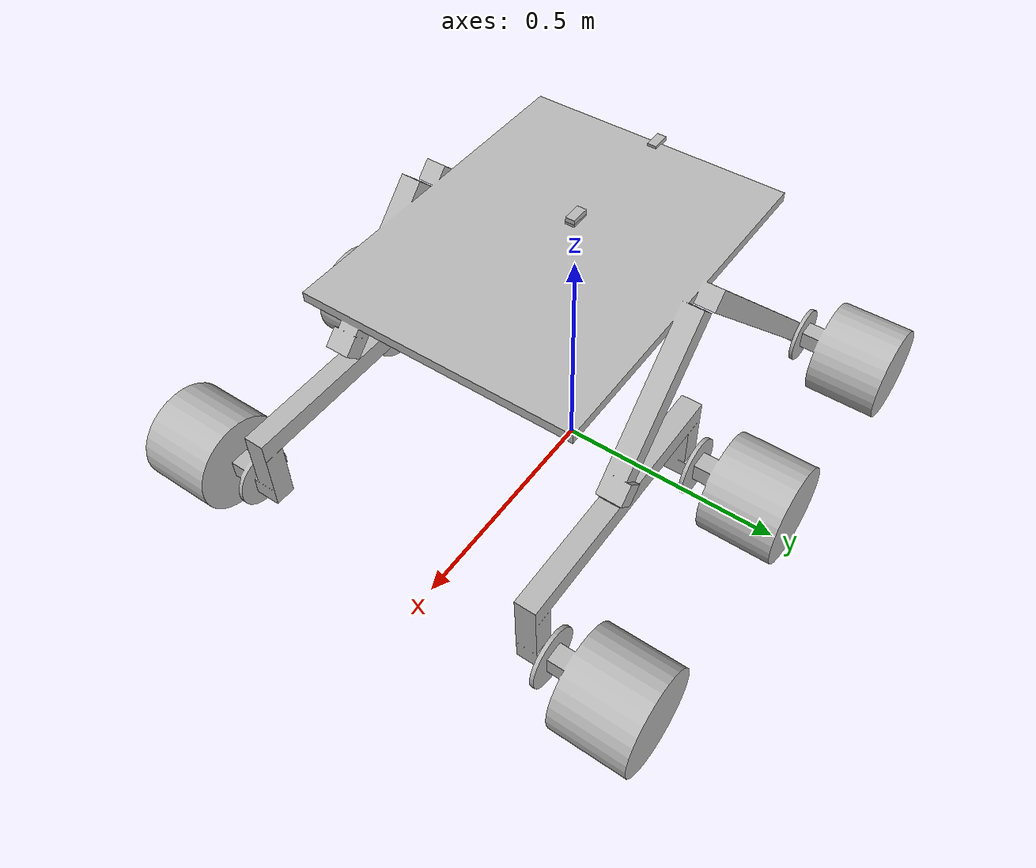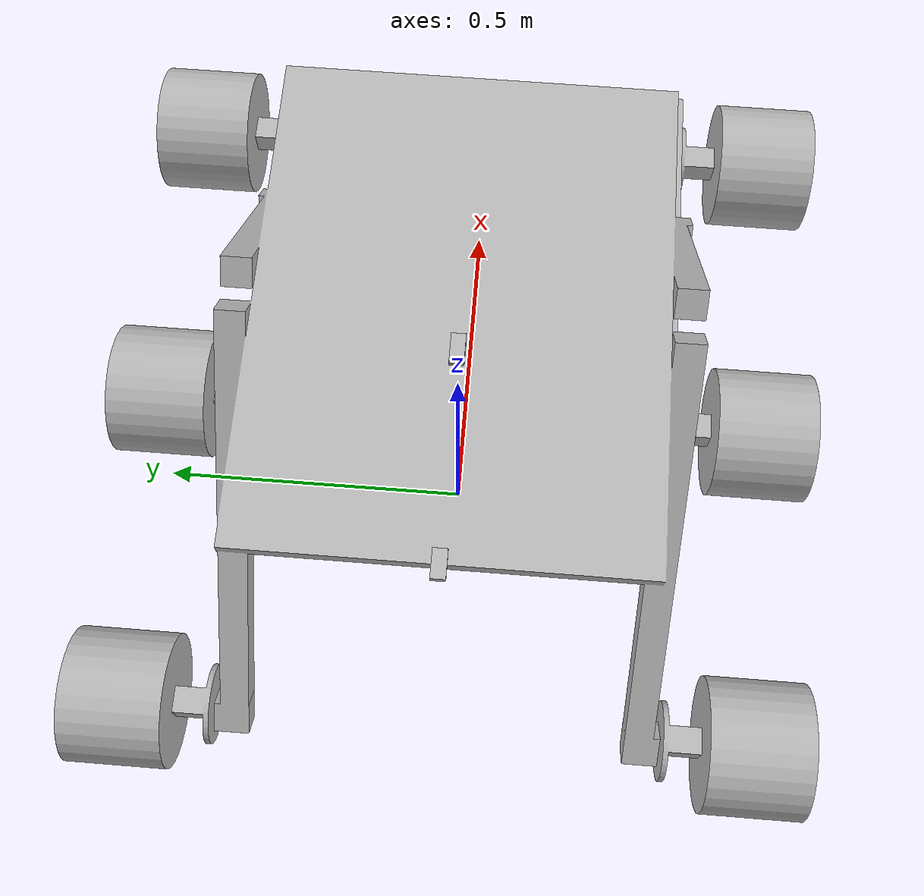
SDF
<?xml version="1.0" ?>
<sdf version="1.5">

<model name="rover">
	<pose>0 0 0.2 0 0 0</pose>
	<static>false</static>
    <link name="chassis">
        <pose>0 0 0 0 0 0</pose>
        <collision name="collision">
            <geometry>
                <mesh>
					<uri>model://rover/3dmodels/platforma_nieruchome.dae</uri>
				</mesh>
            </geometry>
        </collision>
        <visual name="visual">
            <geometry>
                <mesh>
					<uri>model://rover/3dmodels/platforma_nieruchome.dae</uri>
				</mesh>
            </geometry>
        </visual>
    </link>

		<link name="immmmm">
			<pose>-0.0 0 0.41032 0 0 0</pose>
			<collision name="collision">
				<geometry>
						<box>
								<size>.04 .02 .01</size>
							</box>
						</geometry>
			</collision>
			<visual name="visual">
					<geometry>
						<box>
								<size>.04 .02 .01</size>
							</box>
					</geometry>
			</visual>
			<sensor name="imuu" type="imu">
				<pose>0 0 0 0 0 0</pose>
				<plugin name="imu_plugin" filename="libgazebo_ros_imu_sensor.so">
					<topicName>/imu</topicName>
    			<frameName>/data</frameName>
					<updateRateHZ>100.0</updateRateHZ>
        	<gaussianNoise>0.0</gaussianNoise>
        	<xyzOffset>0 0 0</xyzOffset>
        	<rpyOffset>0 0 0</rpyOffset>
				</plugin>

			</sensor>
		</link>

		<joint type="fixed" name="immmmm_front_joint">
						<pose>0.0 -0.0 0.0 0 0 0</pose>
						<child>immmmm</child>
						<parent>chassis</parent>
						<axis>
							<xyz>0 0 0</xyz>
						</axis>
		</joint>

		<link name="lidar">
			<pose>-0.0 0 0.42032 0 0 0</pose>
			<collision name="collision">
				<geometry>
						<box>
								<size>.04 .02 .01</size>
							</box>
						</geometry>
			</collision>
			<visual name="visual">
					<geometry>
						<box>
								<size>.04 .02 .01</size>
							</box>
					</geometry>
			</visual>
			<sensor type="gpu_ray" name="head_hokuyo_sensor">
	<pose>-0.0 0 0 0 0 0</pose>
	<visualize>false</visualize>
	<update_rate>20</update_rate>
	<always_on>1</always_on>
	<ray>
		<scan>
			<horizontal>
				<samples>720</samples>
				<resolution>1</resolution>
				<min_angle>-1.570796</min_angle>
				<max_angle>1.570796</max_angle>
			</horizontal>
		</scan>
		<range>
			<min>1.0</min>
			<max>30.0</max>
			<resolution>0.01</resolution>
		</range>
		<noise>
			<type>gaussian</type>
			<mean>0.0</mean>
			<stddev>0.01</stddev>
		</noise>
	</ray>
	<plugin name="gazebo_ros_head_hokuyo_controller" filename="libgazebo_ros_gpu_laser.so">
		<topicName>/rover/laser/scan</topicName>
		<frameName>lidar</frameName>
	</plugin>
</sensor>
		</link>

		<joint type="fixed" name="lidar_joint">
						<pose>0.0 -0.0 0.0 0 0 0</pose>
						<child>lidar</child>
						<parent>chassis</parent>
						<axis>
							<xyz>0 0 0</xyz>
						</axis>
		</joint>

		<link name="depth_camera">
			<pose>-0.289962 0 0.41032 0 0 0</pose>
			<collision name="collision">
				<geometry>
						<box>
								<size>.04 .02 .01</size>
							</box>
						</geometry>
			</collision>
			<visual name="visual">
					<geometry>
						<box>
								<size>.04 .02 .01</size>
							</box>
					</geometry>
			</visual>
			<sensor name="d_cam" type="depth">
				<pose>0 0 0 0 0 3.14159265</pose>
				<plugin name="depth_controller" filename="libgazebo_ros_openni_kinect.so">
       <baseline>0.2</baseline>
       <alwaysOn>true</alwaysOn>
       <updateRate>1.0</updateRate>
       <cameraName>d_cam_ir</cameraName>
       <imageTopicName>//depth/image_raw</imageTopicName>
       <cameraInfoTopicName>/d_cam/depth/camera_info</cameraInfoTopicName>
       <depthImageTopicName>/d_cam/depth/image_raw</depthImageTopicName>
       <depthImageInfoTopicName>/d_cam/depth/camera_info</depthImageInfoTopicName>
       <pointCloudTopicName>/d_cam/depth/points</pointCloudTopicName>
       <frameName>image</frameName>
       <pointCloudCutoff>0.5</pointCloudCutoff>
       <pointCloudCutoffMax>3.0</pointCloudCutoffMax>
       <distortionK1>0.00000001</distortionK1>
       <distortionK2>0.00000001</distortionK2>
       <distortionK3>0.00000001</distortionK3>
       <distortionT1>0.00000001</distortionT1>
       <distortionT2>0.00000001</distortionT2>
       <CxPrime>0</CxPrime>
       <Cx>0</Cx>
       <Cy>0</Cy>
       <focalLength>0</focalLength>
       <hackBaseline>0</hackBaseline>
     </plugin>
				<camera>
				<image>
					<width> 320</width>
					<height> 200</height>
					<format>R8G8B8</format>
				</image>
				</camera>
				<always_on>1</always_on>
				<update_rate>20</update_rate>
			</sensor>
		</link>

		<joint type="fixed" name="d_camera_front_joint">
						<pose>0.0 -0.0 0.0 0 0 0</pose>
						<child>depth_camera</child>
						<parent>chassis</parent>
						<axis>
							<xyz>0 0 0</xyz>
						</axis>
		</joint>

		<link name="left_steer">
				<pose>0 0 0 0 0 0</pose>
				<collision name="collision">
					<geometry>
					 <mesh>
				<uri>model://rover/3dmodels/platforma_lewe_dwa.dae</uri>
			</mesh>
					</geometry>
				</collision>
				<visual name="visual">
					<geometry>
						<mesh>
				<uri>model://rover/3dmodels/platforma_lewe_dwa.dae</uri>
			</mesh>
					</geometry>
				</visual>
		</link>

		<joint type="revolute" name="left_steer_hinge">
				<pose>0.325254 -0.304042 0.18389 0 0 0</pose>
				<child>left_steer</child>
				<parent>chassis</parent>
				<axis>
					<limit>
          <lower>-1</lower>
          <upper>1</upper>
        </limit>
					<xyz>0 -1 0</xyz>
				</axis>
		</joint>

		<link name="right_steer">
				<pose>0 0 0 0 0 0</pose>
				<collision name="collision">
					<geometry>
					 <mesh>
				<uri>model://rover/3dmodels/platforma_prawe_dwa.dae</uri>
			</mesh>
					</geometry>
				</collision>
				<visual name="visual">
					<geometry>
						<mesh>
				<uri>model://rover/3dmodels/platforma_prawe_dwa.dae</uri>
			</mesh>
					</geometry>
				</visual>
		</link>

		<joint type="revolute" name="right_steer_hinge">
				<pose>0.325254 0.304042 0.18389 0 0 0</pose>
				<child>right_steer</child>
				<parent>chassis</parent>
				<axis>
					<limit>
          <lower>-1</lower>
          <upper>1</upper>
        </limit>
					<xyz>0 1 0</xyz>
				</axis>
		</joint>

	 <link name="left_wheel_1">
        <pose>0 0 0 0 0 0</pose>
        <collision name="collision">
          <geometry>
           <mesh>
				<uri>model://rover/3dmodels/platforma_kolo_lewe1.dae</uri>
			</mesh>
          </geometry>
        </collision>
        <visual name="visual">
          <geometry>
            <mesh>
				<uri>model://rover/3dmodels/platforma_kolo_lewe1.dae</uri>
			</mesh>
          </geometry>
        </visual>
    </link>

		<joint type="revolute" name="left_wheel_1_hinge">
        <pose>-0.414929 -0.346 -0.04176 0 0 0</pose>
        <child>left_wheel_1</child>
        <parent>chassis</parent>
        <axis>
          <xyz>0 -1 0</xyz>
        </axis>

    </joint>

		<link name="left_wheel_2">
				 <pose>0 0 0 0 0 0</pose>
				 <collision name="collision">
					 <geometry>
						<mesh>
				 <uri>model://rover/3dmodels/platforma_kolo_lewe2.dae</uri>
			 </mesh>
					 </geometry>
				 </collision>
				 <visual name="visual">
					 <geometry>
						 <mesh>
				 <uri>model://rover/3dmodels/platforma_kolo_lewe2.dae</uri>
			 </mesh>
					 </geometry>
				 </visual>
		 </link>

		 <joint type="revolute" name="left_wheel_2_hinge">
				 <pose>0.074204 -0.346 0.002938 0 0 0</pose>
				 <child>left_wheel_2</child>
				 <parent>left_steer</parent>
				 <axis>
					 <xyz>0 -1 0</xyz>
				 </axis>
		 </joint>

		 <link name="left_wheel_3">
					<pose>0 0 0 0 0 0</pose>
					<collision name="collision">
						<geometry>
						 <mesh>
				 <uri>model://rover/3dmodels/platforma_kolo_lewe3.dae</uri>
			 </mesh>
						</geometry>
					</collision>
					<visual name="visual">
						<geometry>
							<mesh>
				 <uri>model://rover/3dmodels/platforma_kolo_lewe3.dae</uri>
			 </mesh>
						</geometry>
					</visual>
			</link>

		 <joint type="revolute" name="left_wheel_3_hinge">
					<pose>0.574169 -0.346 0.000093 0 0 0</pose>
					<child>left_wheel_3</child>
					<parent>left_steer</parent>
					<axis>
						<xyz>0 -1 0</xyz>
					</axis>
			</joint>

			<link name="right_wheel_1">
 	        <pose>0 0 0 0 0 0</pose>
 	        <collision name="collision">
 	          <geometry>
 	           <mesh>
 					<uri>model://rover/3dmodels/platforma_kolo_prawe1.dae</uri>
 				</mesh>
 	          </geometry>
 	        </collision>
 	        <visual name="visual">
 	          <geometry>
 	            <mesh>
 					<uri>model://rover/3dmodels/platforma_kolo_prawe1.dae</uri>
 				</mesh>
 	          </geometry>
 	        </visual>
 	    </link>

 			<joint type="revolute" name="right_wheel_1_hinge">
 	        <pose>-0.414929 0.346 -0.04176  0 0 0</pose>
 	        <child>right_wheel_1</child>
 	        <parent>chassis</parent>
 	        <axis>
 	          <xyz>0 1 0</xyz>
 	        </axis>
 	    </joint>

			<link name="right_wheel_2">
					<pose>0 0 0 0 0 0</pose>
					<collision name="collision">
						<geometry>
						 <mesh>
					<uri>model://rover/3dmodels/platforma_kolo_prawe2.dae</uri>
				</mesh>
						</geometry>
					</collision>
					<visual name="visual">
						<geometry>
							<mesh>
					<uri>model://rover/3dmodels/platforma_kolo_prawe2.dae</uri>
				</mesh>
						</geometry>
					</visual>
			</link>

			<joint type="revolute" name="right_wheel_2_hinge">
					<pose>0.074204 0.346 0.002938 0 0 0</pose>
					<child>right_wheel_2</child>
					<parent>right_steer</parent>
					<axis>
						<xyz>0 1 0</xyz>
					</axis>
			</joint>

			<link name="right_wheel_3">
 	        <pose>0 0 0 0 0 0</pose>
 	        <collision name="collision">
 	          <geometry>
 	           <mesh>
 					<uri>model://rover/3dmodels/platforma_kolo_prawe3.dae</uri>
 				</mesh>
 	          </geometry>
 	        </collision>
 	        <visual name="visual">
 	          <geometry>
 	            <mesh>
 					<uri>model://rover/3dmodels/platforma_kolo_prawe3.dae</uri>
 				</mesh>
 	          </geometry>
 	        </visual>
 	    </link>

 			<joint type="revolute" name="right_wheel_3_hinge">
 	        <pose>0.574169 0.346 0.000093 0 0 0</pose>
 	        <child>right_wheel_3</child>
 	        <parent>right_steer</parent>
 	        <axis>
 	          <xyz>0 1 0</xyz>
 	        </axis>
 	    </joint>

</model>
</sdf>
